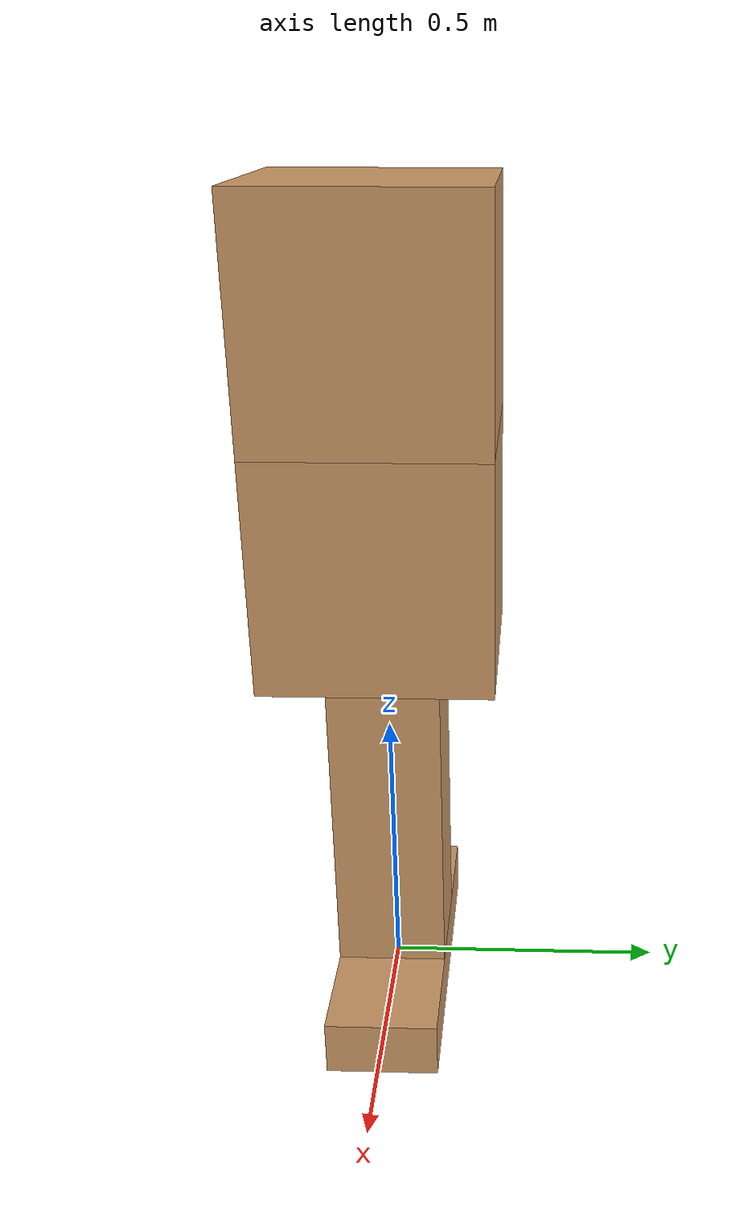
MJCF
<mujoco model="hopper">
  <compiler angle="degree" coordinate="global" inertiafromgeom="true"/>
  <default>
    <joint armature="0" damping="1" limited="true"/>
    <geom conaffinity="1" condim="1" contype="1" margin="0.001" material="geom" rgba="0.8 0.6 .4 1" solimp=".8 .8 .01" solref=".02 1"/>
  </default>
  <option integrator="Euler" timestep="0.002"/>
  <worldbody>
    <light cutoff="100" diffuse="1 1 1" dir="-0 0 -1.3" directional="true" exponent="1" pos="0 0 1.3" specular=".1 .1 .1"/>
    <geom conaffinity="1" condim="3" name="floor" pos="0 0 -10" rgba="0.8 0.9 0.8 1" size="20 20 .125" type="plane" material="MatPlane"/>
    <body name="torso" pos="0 0 1.25">
      <joint armature="0" axis="1 0 0" damping="0" limited="false" name="rootx" pos="0 0 0" stiffness="0" type="slide"/>
      <joint armature="0" axis="0 0 1" damping="0" limited="false" name="rootz" pos="0 0 0" ref="1.25" stiffness="0" type="slide"/>
      <joint armature="0" axis="0 -1 0" damping="0" limited="false" name="rooty" pos="0 0 1.25" stiffness="0" type="hinge"/>
      <geom friction="0.9" pos="0 0 1.25" name="torso_geom" size="0.2 0.2 0.2" type="box"/>
      <body name="torso2" pos="0 0 0.85">
          <joint armature="0" axis="0 -1 0" damping="0" limited="false" name="j1" pos="0 0 1.05" stiffness="0" type="hinge"/>
          <geom friction="0.9" pos="0 0 0.85" name="torso_geom2" size="0.2 0.2 0.2" type="box"/>
          <body name="torso3" pos="0 0 0.35">
              <joint armature="0" axis="0 -1 0" damping="0" limited="false" name="j2" pos="0 0 0.65" stiffness="0" type="hinge"/>
              <geom friction="0.9" pos="0 0 0.35" name="torso_geom3" size="0.1 0.1 0.3" type="box"/>
              <body name="torso4" pos="0 0 0.0">
                  <joint armature="0" axis="0 -1 0" damping="0" limited="false" name="j3" pos="0 0 0.05" stiffness="0" type="hinge"/>
                  <geom friction="0.9" pos="0 0 0.0" name="torso_geom4" size="0.3 0.1 0.05" type="box"/>
              </body>
          </body>
      </body>
    </body>
  </worldbody>
    <asset>
        <texture type="skybox" builtin="gradient" rgb1=".4 .5 .6" rgb2="0 0 0"
            width="100" height="100"/>
        <texture builtin="flat" height="1278" mark="cross" markrgb="1 1 1" name="texgeom" random="0.01" rgb1="0.8 0.6 0.4" rgb2="0.8 0.6 0.4" type="cube" width="127"/>
        <texture builtin="checker" height="100" name="texplane" rgb1="0 0 0" rgb2="0.8 0.8 0.8" type="2d" width="100"/>
        <material name="MatPlane" reflectance="0.5" shininess="1" specular="1" texrepeat="60 60" texture="texplane"/>
        <material name="geom" texture="texgeom" texuniform="true"/>
    </asset>
</mujoco>
